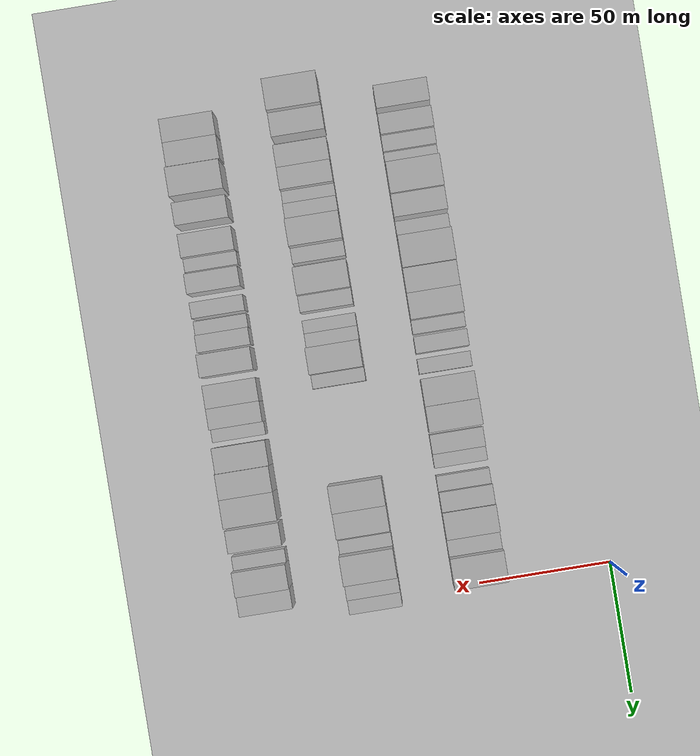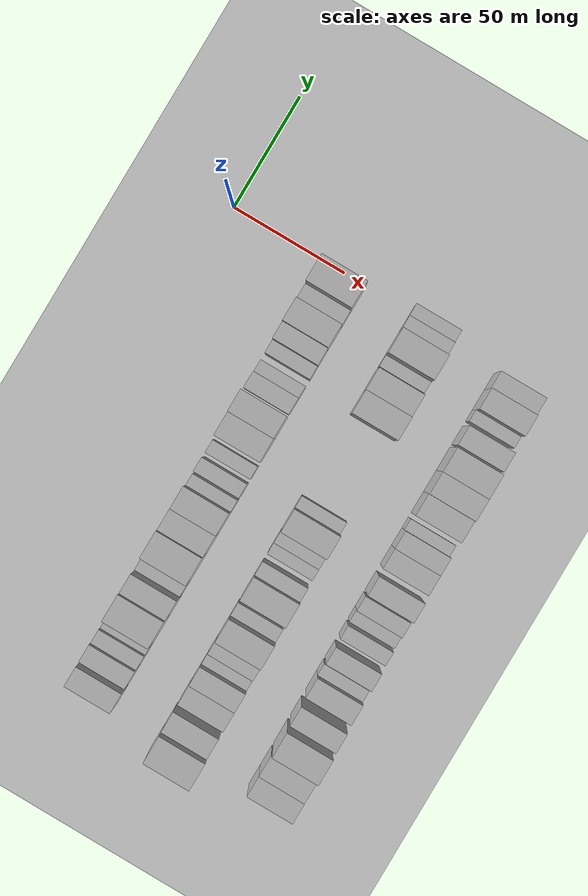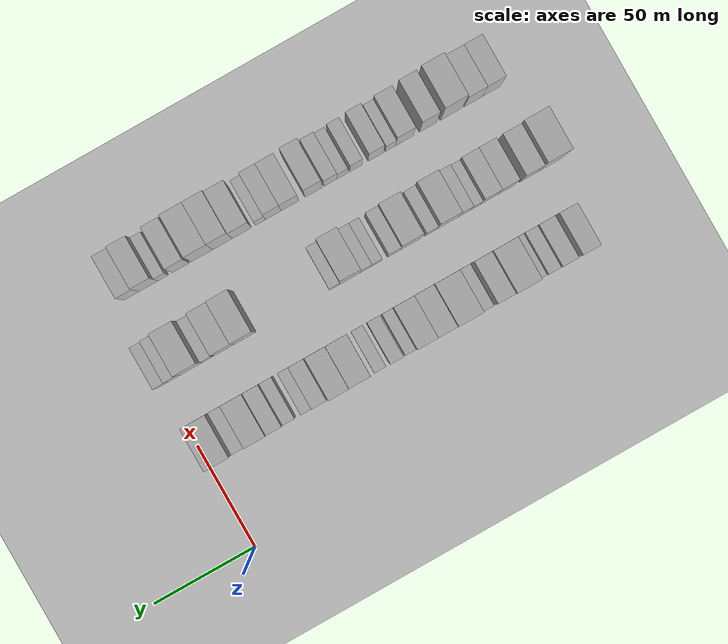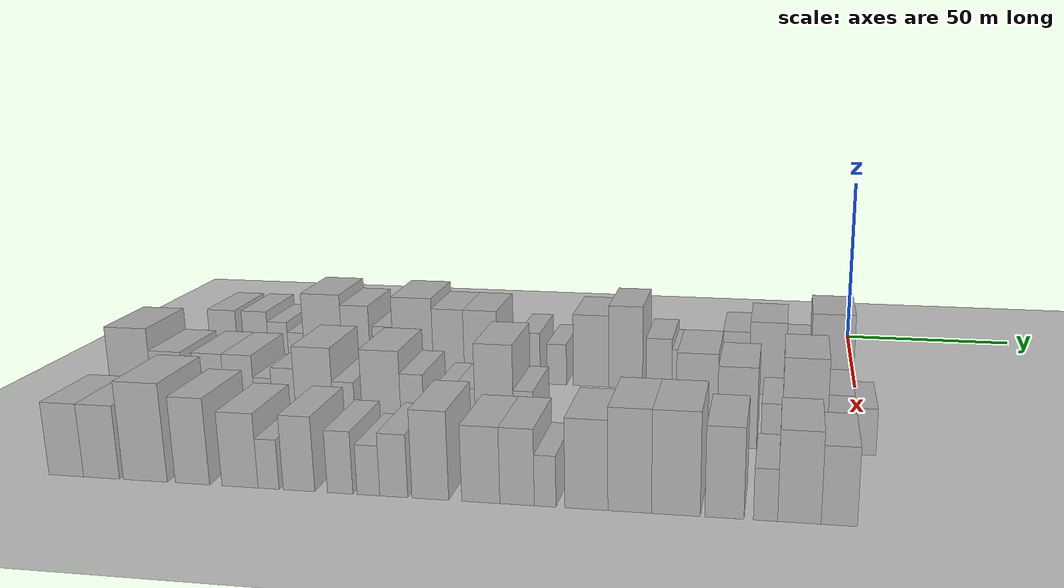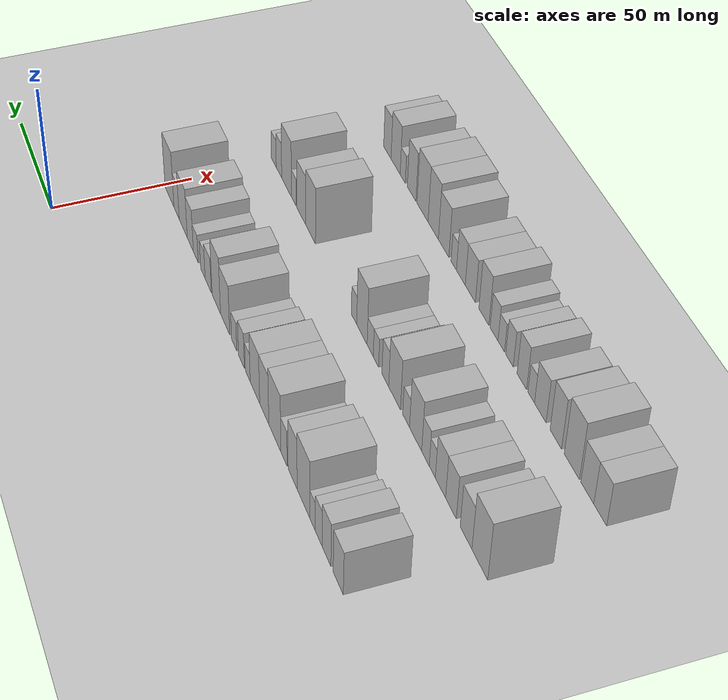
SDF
<sdf version="1.6">
 <world name="default">
  <include><name>ground_plane_1</name><uri>model://HANNAS_ground_plane</uri></include>
  <model name="building_21">
   <static>1</static>
   <pose>50.0000 -184.9429 0 0.000000 0.000000 0.000000</pose>
   <link name="link">
    <pose>0 0 9.00 0 0 0</pose>
    <collision name="collision"><geometry><box><size>20.0000 8.5980 18.0000</size></box></geometry></collision>
    <visual name="visual">
     <cast_shadows>0</cast_shadows>
     <geometry><box><size>20.0000 8.5980 18.0000</size></box></geometry>
     <material>
      <script>
       <uri>model://HANNAS_wall/materials/scripts</uri>
       <uri>model://HANNAS_wall/materials/textures</uri>
       <name>vrc/HANNAS_wall</name>
      </script>
     </material>
    </visual>
   </link>
  </model>
  <model name="building_22">
   <static>1</static>
   <pose>50.0000 -174.7971 0 0.000000 0.000000 0.000000</pose>
   <link name="link">
    <pose>0 0 9.00 0 0 0</pose>
    <collision name="collision"><geometry><box><size>20.0000 7.6934 18.0000</size></box></geometry></collision>
    <visual name="visual">
     <cast_shadows>0</cast_shadows>
     <geometry><box><size>20.0000 7.6934 18.0000</size></box></geometry>
     <material>
      <script>
       <uri>model://HANNAS_wall/materials/scripts</uri>
       <uri>model://HANNAS_wall/materials/textures</uri>
       <name>vrc/HANNAS_wall</name>
      </script>
     </material>
    </visual>
   </link>
  </model>
  <model name="building_23">
   <static>1</static>
   <pose>50.0000 -167.9164 0 0.000000 0.000000 0.000000</pose>
   <link name="link">
    <pose>0 0 7.50 0 0 0</pose>
    <collision name="collision"><geometry><box><size>20.0000 6.0680 15.0000</size></box></geometry></collision>
    <visual name="visual">
     <cast_shadows>0</cast_shadows>
     <geometry><box><size>20.0000 6.0680 15.0000</size></box></geometry>
     <material>
      <script>
       <uri>model://HANNAS_wall/materials/scripts</uri>
       <uri>model://HANNAS_wall/materials/textures</uri>
       <name>vrc/HANNAS_wall</name>
      </script>
     </material>
    </visual>
   </link>
  </model>
  <model name="building_24">
   <static>1</static>
   <pose>50.0000 -162.3977 0 0.000000 0.000000 0.000000</pose>
   <link name="link">
    <pose>0 0 6.00 0 0 0</pose>
    <collision name="collision"><geometry><box><size>20.0000 4.9694 12.0000</size></box></geometry></collision>
    <visual name="visual">
     <cast_shadows>0</cast_shadows>
     <geometry><box><size>20.0000 4.9694 12.0000</size></box></geometry>
     <material>
      <script>
       <uri>model://HANNAS_wall/materials/scripts</uri>
       <uri>model://HANNAS_wall/materials/textures</uri>
       <name>vrc/HANNAS_wall</name>
      </script>
     </material>
    </visual>
   </link>
  </model>
  <model name="building_25">
   <static>1</static>
   <pose>50.0000 -154.0770 0 0.000000 0.000000 0.000000</pose>
   <link name="link">
    <pose>0 0 12.00 0 0 0</pose>
    <collision name="collision"><geometry><box><size>20.0000 11.6722 24.0000</size></box></geometry></collision>
    <visual name="visual">
     <cast_shadows>0</cast_shadows>
     <geometry><box><size>20.0000 11.6722 24.0000</size></box></geometry>
     <material>
      <script>
       <uri>model://HANNAS_wall/materials/scripts</uri>
       <uri>model://HANNAS_wall/materials/textures</uri>
       <name>vrc/HANNAS_wall</name>
      </script>
     </material>
    </visual>
   </link>
  </model>
  <model name="building_26">
   <static>1</static>
   <pose>50.0000 -143.9852 0 0.000000 0.000000 0.000000</pose>
   <link name="link">
    <pose>0 0 10.50 0 0 0</pose>
    <collision name="collision"><geometry><box><size>20.0000 8.5114 21.0000</size></box></geometry></collision>
    <visual name="visual">
     <cast_shadows>0</cast_shadows>
     <geometry><box><size>20.0000 8.5114 21.0000</size></box></geometry>
     <material>
      <script>
       <uri>model://HANNAS_wall/materials/scripts</uri>
       <uri>model://HANNAS_wall/materials/textures</uri>
       <name>vrc/HANNAS_wall</name>
      </script>
     </material>
    </visual>
   </link>
  </model>
  <model name="building_27">
   <static>1</static>
   <pose>50.0000 -135.7259 0 0.000000 0.000000 0.000000</pose>
   <link name="link">
    <pose>0 0 7.50 0 0 0</pose>
    <collision name="collision"><geometry><box><size>20.0000 6.0072 15.0000</size></box></geometry></collision>
    <visual name="visual">
     <cast_shadows>0</cast_shadows>
     <geometry><box><size>20.0000 6.0072 15.0000</size></box></geometry>
     <material>
      <script>
       <uri>model://HANNAS_wall/materials/scripts</uri>
       <uri>model://HANNAS_wall/materials/textures</uri>
       <name>vrc/HANNAS_wall</name>
      </script>
     </material>
    </visual>
   </link>
  </model>
  <model name="building_28">
   <static>1</static>
   <pose>50.0000 -126.7487 0 0.000000 0.000000 0.000000</pose>
   <link name="link">
    <pose>0 0 12.00 0 0 0</pose>
    <collision name="collision"><geometry><box><size>20.0000 11.9471 24.0000</size></box></geometry></collision>
    <visual name="visual">
     <cast_shadows>0</cast_shadows>
     <geometry><box><size>20.0000 11.9471 24.0000</size></box></geometry>
     <material>
      <script>
       <uri>model://HANNAS_wall/materials/scripts</uri>
       <uri>model://HANNAS_wall/materials/textures</uri>
       <name>vrc/HANNAS_wall</name>
      </script>
     </material>
    </visual>
   </link>
  </model>
  <model name="building_29">
   <static>1</static>
   <pose>50.0000 -116.1441 0 0.000000 0.000000 0.000000</pose>
   <link name="link">
    <pose>0 0 10.50 0 0 0</pose>
    <collision name="collision"><geometry><box><size>20.0000 9.2621 21.0000</size></box></geometry></collision>
    <visual name="visual">
     <cast_shadows>0</cast_shadows>
     <geometry><box><size>20.0000 9.2621 21.0000</size></box></geometry>
     <material>
      <script>
       <uri>model://HANNAS_wall/materials/scripts</uri>
       <uri>model://HANNAS_wall/materials/textures</uri>
       <name>vrc/HANNAS_wall</name>
      </script>
     </material>
    </visual>
   </link>
  </model>
  <model name="building_30">
   <static>1</static>
   <pose>50.0000 -106.5851 0 0.000000 0.000000 0.000000</pose>
   <link name="link">
    <pose>0 0 10.50 0 0 0</pose>
    <collision name="collision"><geometry><box><size>20.0000 9.8558 21.0000</size></box></geometry></collision>
    <visual name="visual">
     <cast_shadows>0</cast_shadows>
     <geometry><box><size>20.0000 9.8558 21.0000</size></box></geometry>
     <material>
      <script>
       <uri>model://HANNAS_wall/materials/scripts</uri>
       <uri>model://HANNAS_wall/materials/textures</uri>
       <name>vrc/HANNAS_wall</name>
      </script>
     </material>
    </visual>
   </link>
  </model>
  <model name="building_31">
   <static>1</static>
   <pose>50.0000 -99.0614 0 0.000000 0.000000 0.000000</pose>
   <link name="link">
    <pose>0 0 6.00 0 0 0</pose>
    <collision name="collision"><geometry><box><size>20.0000 5.1916 12.0000</size></box></geometry></collision>
    <visual name="visual">
     <cast_shadows>0</cast_shadows>
     <geometry><box><size>20.0000 5.1916 12.0000</size></box></geometry>
     <material>
      <script>
       <uri>model://HANNAS_wall/materials/scripts</uri>
       <uri>model://HANNAS_wall/materials/textures</uri>
       <name>vrc/HANNAS_wall</name>
      </script>
     </material>
    </visual>
   </link>
  </model>
  <model name="building_32">
   <static>1</static>
   <pose>50.0000 -92.3239 0 0.000000 0.000000 0.000000</pose>
   <link name="link">
    <pose>0 0 7.50 0 0 0</pose>
    <collision name="collision"><geometry><box><size>20.0000 6.2834 15.0000</size></box></geometry></collision>
    <visual name="visual">
     <cast_shadows>0</cast_shadows>
     <geometry><box><size>20.0000 6.2834 15.0000</size></box></geometry>
     <material>
      <script>
       <uri>model://HANNAS_wall/materials/scripts</uri>
       <uri>model://HANNAS_wall/materials/textures</uri>
       <name>vrc/HANNAS_wall</name>
      </script>
     </material>
    </visual>
   </link>
  </model>
  <model name="building_33">
   <static>1</static>
   <pose>50.0000 -84.3592 0 0.000000 0.000000 0.000000</pose>
   <link name="link">
    <pose>0 0 6.00 0 0 0</pose>
    <collision name="collision"><geometry><box><size>20.0000 5.6460 12.0000</size></box></geometry></collision>
    <visual name="visual">
     <cast_shadows>0</cast_shadows>
     <geometry><box><size>20.0000 5.6460 12.0000</size></box></geometry>
     <material>
      <script>
       <uri>model://HANNAS_wall/materials/scripts</uri>
       <uri>model://HANNAS_wall/materials/textures</uri>
       <name>vrc/HANNAS_wall</name>
      </script>
     </material>
    </visual>
   </link>
  </model>
  <model name="building_34">
   <static>1</static>
   <pose>50.0000 -74.3983 0 0.000000 0.000000 0.000000</pose>
   <link name="link">
    <pose>0 0 10.50 0 0 0</pose>
    <collision name="collision"><geometry><box><size>20.0000 10.2758 21.0000</size></box></geometry></collision>
    <visual name="visual">
     <cast_shadows>0</cast_shadows>
     <geometry><box><size>20.0000 10.2758 21.0000</size></box></geometry>
     <material>
      <script>
       <uri>model://HANNAS_wall/materials/scripts</uri>
       <uri>model://HANNAS_wall/materials/textures</uri>
       <name>vrc/HANNAS_wall</name>
      </script>
     </material>
    </visual>
   </link>
  </model>
  <model name="building_35">
   <static>1</static>
   <pose>50.0000 -64.4441 0 0.000000 0.000000 0.000000</pose>
   <link name="link">
    <pose>0 0 12.00 0 0 0</pose>
    <collision name="collision"><geometry><box><size>20.0000 9.6326 24.0000</size></box></geometry></collision>
    <visual name="visual">
     <cast_shadows>0</cast_shadows>
     <geometry><box><size>20.0000 9.6326 24.0000</size></box></geometry>
     <material>
      <script>
       <uri>model://HANNAS_wall/materials/scripts</uri>
       <uri>model://HANNAS_wall/materials/textures</uri>
       <name>vrc/HANNAS_wall</name>
      </script>
     </material>
    </visual>
   </link>
  </model>
  <model name="building_36">
   <static>1</static>
   <pose>50.0000 -54.9744 0 0.000000 0.000000 0.000000</pose>
   <link name="link">
    <pose>0 0 7.50 0 0 0</pose>
    <collision name="collision"><geometry><box><size>20.0000 7.3068 15.0000</size></box></geometry></collision>
    <visual name="visual">
     <cast_shadows>0</cast_shadows>
     <geometry><box><size>20.0000 7.3068 15.0000</size></box></geometry>
     <material>
      <script>
       <uri>model://HANNAS_wall/materials/scripts</uri>
       <uri>model://HANNAS_wall/materials/textures</uri>
       <name>vrc/HANNAS_wall</name>
      </script>
     </material>
    </visual>
   </link>
  </model>
  <model name="building_37">
   <static>1</static>
   <pose>50.0000 -48.6844 0 0.000000 0.000000 0.000000</pose>
   <link name="link">
    <pose>0 0 6.00 0 0 0</pose>
    <collision name="collision"><geometry><box><size>20.0000 5.2732 12.0000</size></box></geometry></collision>
    <visual name="visual">
     <cast_shadows>0</cast_shadows>
     <geometry><box><size>20.0000 5.2732 12.0000</size></box></geometry>
     <material>
      <script>
       <uri>model://HANNAS_wall/materials/scripts</uri>
       <uri>model://HANNAS_wall/materials/textures</uri>
       <name>vrc/HANNAS_wall</name>
      </script>
     </material>
    </visual>
   </link>
  </model>
  <model name="building_38">
   <static>1</static>
   <pose>50.0000 -40.1259 0 0.000000 0.000000 0.000000</pose>
   <link name="link">
    <pose>0 0 6.00 0 0 0</pose>
    <collision name="collision"><geometry><box><size>20.0000 5.8437 12.0000</size></box></geometry></collision>
    <visual name="visual">
     <cast_shadows>0</cast_shadows>
     <geometry><box><size>20.0000 5.8437 12.0000</size></box></geometry>
     <material>
      <script>
       <uri>model://HANNAS_wall/materials/scripts</uri>
       <uri>model://HANNAS_wall/materials/textures</uri>
       <name>vrc/HANNAS_wall</name>
      </script>
     </material>
    </visual>
   </link>
  </model>
  <model name="building_39">
   <static>1</static>
   <pose>50.0000 -33.4594 0 0.000000 0.000000 0.000000</pose>
   <link name="link">
    <pose>0 0 9.00 0 0 0</pose>
    <collision name="collision"><geometry><box><size>20.0000 7.4892 18.0000</size></box></geometry></collision>
    <visual name="visual">
     <cast_shadows>0</cast_shadows>
     <geometry><box><size>20.0000 7.4892 18.0000</size></box></geometry>
     <material>
      <script>
       <uri>model://HANNAS_wall/materials/scripts</uri>
       <uri>model://HANNAS_wall/materials/textures</uri>
       <name>vrc/HANNAS_wall</name>
      </script>
     </material>
    </visual>
   </link>
  </model>
  <model name="building_40">
   <static>1</static>
   <pose>50.0000 -24.6484 0 0.000000 0.000000 0.000000</pose>
   <link name="link">
    <pose>0 0 10.50 0 0 0</pose>
    <collision name="collision"><geometry><box><size>20.0000 10.1328 21.0000</size></box></geometry></collision>
    <visual name="visual">
     <cast_shadows>0</cast_shadows>
     <geometry><box><size>20.0000 10.1328 21.0000</size></box></geometry>
     <material>
      <script>
       <uri>model://HANNAS_wall/materials/scripts</uri>
       <uri>model://HANNAS_wall/materials/textures</uri>
       <name>vrc/HANNAS_wall</name>
      </script>
     </material>
    </visual>
   </link>
  </model>
  <model name="building_41">
   <static>1</static>
   <pose>50.0000 -16.2429 0 0.000000 0.000000 0.000000</pose>
   <link name="link">
    <pose>0 0 7.50 0 0 0</pose>
    <collision name="collision"><geometry><box><size>20.0000 6.6781 15.0000</size></box></geometry></collision>
    <visual name="visual">
     <cast_shadows>0</cast_shadows>
     <geometry><box><size>20.0000 6.6781 15.0000</size></box></geometry>
     <material>
      <script>
       <uri>model://HANNAS_wall/materials/scripts</uri>
       <uri>model://HANNAS_wall/materials/textures</uri>
       <name>vrc/HANNAS_wall</name>
      </script>
     </material>
    </visual>
   </link>
  </model>
  <model name="building_42">
   <static>1</static>
   <pose>50.0000 -7.0785 0 0.000000 0.000000 0.000000</pose>
   <link name="link">
    <pose>0 0 12.00 0 0 0</pose>
    <collision name="collision"><geometry><box><size>20.0000 11.6508 24.0000</size></box></geometry></collision>
    <visual name="visual">
     <cast_shadows>0</cast_shadows>
     <geometry><box><size>20.0000 11.6508 24.0000</size></box></geometry>
     <material>
      <script>
       <uri>model://HANNAS_wall/materials/scripts</uri>
       <uri>model://HANNAS_wall/materials/textures</uri>
       <name>vrc/HANNAS_wall</name>
      </script>
     </material>
    </visual>
   </link>
  </model>
  <model name="building_104">
   <static>1</static>
   <pose>90.0000 -191.2590 0 0.000000 0.000000 0.000000</pose>
   <link name="link">
    <pose>0 0 12.00 0 0 0</pose>
    <collision name="collision"><geometry><box><size>20.0000 11.6969 24.0000</size></box></geometry></collision>
    <visual name="visual">
     <cast_shadows>0</cast_shadows>
     <geometry><box><size>20.0000 11.6969 24.0000</size></box></geometry>
     <material>
      <script>
       <uri>model://HANNAS_wall/materials/scripts</uri>
       <uri>model://HANNAS_wall/materials/textures</uri>
       <name>vrc/HANNAS_wall</name>
      </script>
     </material>
    </visual>
   </link>
  </model>
  <model name="building_105">
   <static>1</static>
   <pose>90.0000 -180.9404 0 0.000000 0.000000 0.000000</pose>
   <link name="link">
    <pose>0 0 9.00 0 0 0</pose>
    <collision name="collision"><geometry><box><size>20.0000 8.9405 18.0000</size></box></geometry></collision>
    <visual name="visual">
     <cast_shadows>0</cast_shadows>
     <geometry><box><size>20.0000 8.9405 18.0000</size></box></geometry>
     <material>
      <script>
       <uri>model://HANNAS_wall/materials/scripts</uri>
       <uri>model://HANNAS_wall/materials/textures</uri>
       <name>vrc/HANNAS_wall</name>
      </script>
     </material>
    </visual>
   </link>
  </model>
  <model name="building_106">
   <static>1</static>
   <pose>90.0000 -169.2870 0 0.000000 0.000000 0.000000</pose>
   <link name="link">
    <pose>0 0 9.00 0 0 0</pose>
    <collision name="collision"><geometry><box><size>20.0000 8.3663 18.0000</size></box></geometry></collision>
    <visual name="visual">
     <cast_shadows>0</cast_shadows>
     <geometry><box><size>20.0000 8.3663 18.0000</size></box></geometry>
     <material>
      <script>
       <uri>model://HANNAS_wall/materials/scripts</uri>
       <uri>model://HANNAS_wall/materials/textures</uri>
       <name>vrc/HANNAS_wall</name>
      </script>
     </material>
    </visual>
   </link>
  </model>
  <model name="building_107">
   <static>1</static>
   <pose>90.0000 -160.9855 0 0.000000 0.000000 0.000000</pose>
   <link name="link">
    <pose>0 0 9.00 0 0 0</pose>
    <collision name="collision"><geometry><box><size>20.0000 8.2366 18.0000</size></box></geometry></collision>
    <visual name="visual">
     <cast_shadows>0</cast_shadows>
     <geometry><box><size>20.0000 8.2366 18.0000</size></box></geometry>
     <material>
      <script>
       <uri>model://HANNAS_wall/materials/scripts</uri>
       <uri>model://HANNAS_wall/materials/textures</uri>
       <name>vrc/HANNAS_wall</name>
      </script>
     </material>
    </visual>
   </link>
  </model>
  <model name="building_108">
   <static>1</static>
   <pose>90.0000 -154.3881 0 0.000000 0.000000 0.000000</pose>
   <link name="link">
    <pose>0 0 6.00 0 0 0</pose>
    <collision name="collision"><geometry><box><size>20.0000 4.9584 12.0000</size></box></geometry></collision>
    <visual name="visual">
     <cast_shadows>0</cast_shadows>
     <geometry><box><size>20.0000 4.9584 12.0000</size></box></geometry>
     <material>
      <script>
       <uri>model://HANNAS_wall/materials/scripts</uri>
       <uri>model://HANNAS_wall/materials/textures</uri>
       <name>vrc/HANNAS_wall</name>
      </script>
     </material>
    </visual>
   </link>
  </model>
  <model name="building_109">
   <static>1</static>
   <pose>90.0000 -148.8014 0 0.000000 0.000000 0.000000</pose>
   <link name="link">
    <pose>0 0 7.50 0 0 0</pose>
    <collision name="collision"><geometry><box><size>20.0000 6.2149 15.0000</size></box></geometry></collision>
    <visual name="visual">
     <cast_shadows>0</cast_shadows>
     <geometry><box><size>20.0000 6.2149 15.0000</size></box></geometry>
     <material>
      <script>
       <uri>model://HANNAS_wall/materials/scripts</uri>
       <uri>model://HANNAS_wall/materials/textures</uri>
       <name>vrc/HANNAS_wall</name>
      </script>
     </material>
    </visual>
   </link>
  </model>
  <model name="building_110">
   <static>1</static>
   <pose>90.0000 -140.5564 0 0.000000 0.000000 0.000000</pose>
   <link name="link">
    <pose>0 0 10.50 0 0 0</pose>
    <collision name="collision"><geometry><box><size>20.0000 10.2752 21.0000</size></box></geometry></collision>
    <visual name="visual">
     <cast_shadows>0</cast_shadows>
     <geometry><box><size>20.0000 10.2752 21.0000</size></box></geometry>
     <material>
      <script>
       <uri>model://HANNAS_wall/materials/scripts</uri>
       <uri>model://HANNAS_wall/materials/textures</uri>
       <name>vrc/HANNAS_wall</name>
      </script>
     </material>
    </visual>
   </link>
  </model>
  <model name="building_111">
   <static>1</static>
   <pose>90.0000 -132.5058 0 0.000000 0.000000 0.000000</pose>
   <link name="link">
    <pose>0 0 6.00 0 0 0</pose>
    <collision name="collision"><geometry><box><size>20.0000 5.8261 12.0000</size></box></geometry></collision>
    <visual name="visual">
     <cast_shadows>0</cast_shadows>
     <geometry><box><size>20.0000 5.8261 12.0000</size></box></geometry>
     <material>
      <script>
       <uri>model://HANNAS_wall/materials/scripts</uri>
       <uri>model://HANNAS_wall/materials/textures</uri>
       <name>vrc/HANNAS_wall</name>
      </script>
     </material>
    </visual>
   </link>
  </model>
  <model name="building_112">
   <static>1</static>
   <pose>90.0000 -122.4052 0 0.000000 0.000000 0.000000</pose>
   <link name="link">
    <pose>0 0 10.50 0 0 0</pose>
    <collision name="collision"><geometry><box><size>20.0000 10.3751 21.0000</size></box></geometry></collision>
    <visual name="visual">
     <cast_shadows>0</cast_shadows>
     <geometry><box><size>20.0000 10.3751 21.0000</size></box></geometry>
     <material>
      <script>
       <uri>model://HANNAS_wall/materials/scripts</uri>
       <uri>model://HANNAS_wall/materials/textures</uri>
       <name>vrc/HANNAS_wall</name>
      </script>
     </material>
    </visual>
   </link>
  </model>
  <model name="building_113">
   <static>1</static>
   <pose>90.0000 -114.1606 0 0.000000 0.000000 0.000000</pose>
   <link name="link">
    <pose>0 0 7.50 0 0 0</pose>
    <collision name="collision"><geometry><box><size>20.0000 6.1142 15.0000</size></box></geometry></collision>
    <visual name="visual">
     <cast_shadows>0</cast_shadows>
     <geometry><box><size>20.0000 6.1142 15.0000</size></box></geometry>
     <material>
      <script>
       <uri>model://HANNAS_wall/materials/scripts</uri>
       <uri>model://HANNAS_wall/materials/textures</uri>
       <name>vrc/HANNAS_wall</name>
      </script>
     </material>
    </visual>
   </link>
  </model>
  <model name="building_114">
   <static>1</static>
   <pose>90.0000 -105.6627 0 0.000000 0.000000 0.000000</pose>
   <link name="link">
    <pose>0 0 6.00 0 0 0</pose>
    <collision name="collision"><geometry><box><size>20.0000 4.8816 12.0000</size></box></geometry></collision>
    <visual name="visual">
     <cast_shadows>0</cast_shadows>
     <geometry><box><size>20.0000 4.8816 12.0000</size></box></geometry>
     <material>
      <script>
       <uri>model://HANNAS_wall/materials/scripts</uri>
       <uri>model://HANNAS_wall/materials/textures</uri>
       <name>vrc/HANNAS_wall</name>
      </script>
     </material>
    </visual>
   </link>
  </model>
  <model name="building_115">
   <static>1</static>
   <pose>90.0000 -100.3809 0 0.000000 0.000000 0.000000</pose>
   <link name="link">
    <pose>0 0 6.00 0 0 0</pose>
    <collision name="collision"><geometry><box><size>20.0000 5.6820 12.0000</size></box></geometry></collision>
    <visual name="visual">
     <cast_shadows>0</cast_shadows>
     <geometry><box><size>20.0000 5.6820 12.0000</size></box></geometry>
     <material>
      <script>
       <uri>model://HANNAS_wall/materials/scripts</uri>
       <uri>model://HANNAS_wall/materials/textures</uri>
       <name>vrc/HANNAS_wall</name>
      </script>
     </material>
    </visual>
   </link>
  </model>
  <model name="building_116">
   <static>1</static>
   <pose>90.0000 -92.5553 0 0.000000 0.000000 0.000000</pose>
   <link name="link">
    <pose>0 0 12.00 0 0 0</pose>
    <collision name="collision"><geometry><box><size>20.0000 9.9691 24.0000</size></box></geometry></collision>
    <visual name="visual">
     <cast_shadows>0</cast_shadows>
     <geometry><box><size>20.0000 9.9691 24.0000</size></box></geometry>
     <material>
      <script>
       <uri>model://HANNAS_wall/materials/scripts</uri>
       <uri>model://HANNAS_wall/materials/textures</uri>
       <name>vrc/HANNAS_wall</name>
      </script>
     </material>
    </visual>
   </link>
  </model>
  <model name="building_117">
   <static>1</static>
   <pose>90.0000 -84.9997 0 0.000000 0.000000 0.000000</pose>
   <link name="link">
    <pose>0 0 6.00 0 0 0</pose>
    <collision name="collision"><geometry><box><size>20.0000 5.1421 12.0000</size></box></geometry></collision>
    <visual name="visual">
     <cast_shadows>0</cast_shadows>
     <geometry><box><size>20.0000 5.1421 12.0000</size></box></geometry>
     <material>
      <script>
       <uri>model://HANNAS_wall/materials/scripts</uri>
       <uri>model://HANNAS_wall/materials/textures</uri>
       <name>vrc/HANNAS_wall</name>
      </script>
     </material>
    </visual>
   </link>
  </model>
  <model name="building_118">
   <static>1</static>
   <pose>90.0000 -41.1216 0 0.000000 0.000000 0.000000</pose>
   <link name="link">
    <pose>0 0 12.00 0 0 0</pose>
    <collision name="collision"><geometry><box><size>20.0000 10.2047 24.0000</size></box></geometry></collision>
    <visual name="visual">
     <cast_shadows>0</cast_shadows>
     <geometry><box><size>20.0000 10.2047 24.0000</size></box></geometry>
     <material>
      <script>
       <uri>model://HANNAS_wall/materials/scripts</uri>
       <uri>model://HANNAS_wall/materials/textures</uri>
       <name>vrc/HANNAS_wall</name>
      </script>
     </material>
    </visual>
   </link>
  </model>
  <model name="building_119">
   <static>1</static>
   <pose>90.0000 -31.1318 0 0.000000 0.000000 0.000000</pose>
   <link name="link">
    <pose>0 0 10.50 0 0 0</pose>
    <collision name="collision"><geometry><box><size>20.0000 9.7748 21.0000</size></box></geometry></collision>
    <visual name="visual">
     <cast_shadows>0</cast_shadows>
     <geometry><box><size>20.0000 9.7748 21.0000</size></box></geometry>
     <material>
      <script>
       <uri>model://HANNAS_wall/materials/scripts</uri>
       <uri>model://HANNAS_wall/materials/textures</uri>
       <name>vrc/HANNAS_wall</name>
      </script>
     </material>
    </visual>
   </link>
  </model>
  <model name="building_120">
   <static>1</static>
   <pose>90.0000 -22.6886 0 0.000000 0.000000 0.000000</pose>
   <link name="link">
    <pose>0 0 6.00 0 0 0</pose>
    <collision name="collision"><geometry><box><size>20.0000 5.1116 12.0000</size></box></geometry></collision>
    <visual name="visual">
     <cast_shadows>0</cast_shadows>
     <geometry><box><size>20.0000 5.1116 12.0000</size></box></geometry>
     <material>
      <script>
       <uri>model://HANNAS_wall/materials/scripts</uri>
       <uri>model://HANNAS_wall/materials/textures</uri>
       <name>vrc/HANNAS_wall</name>
      </script>
     </material>
    </visual>
   </link>
  </model>
  <model name="building_121">
   <static>1</static>
   <pose>90.0000 -14.6703 0 0.000000 0.000000 0.000000</pose>
   <link name="link">
    <pose>0 0 12.00 0 0 0</pose>
    <collision name="collision"><geometry><box><size>20.0000 10.9248 24.0000</size></box></geometry></collision>
    <visual name="visual">
     <cast_shadows>0</cast_shadows>
     <geometry><box><size>20.0000 10.9248 24.0000</size></box></geometry>
     <material>
      <script>
       <uri>model://HANNAS_wall/materials/scripts</uri>
       <uri>model://HANNAS_wall/materials/textures</uri>
       <name>vrc/HANNAS_wall</name>
      </script>
     </material>
    </visual>
   </link>
  </model>
  <model name="building_122">
   <static>1</static>
   <pose>90.0000 -6.0878 0 0.000000 0.000000 0.000000</pose>
   <link name="link">
    <pose>0 0 7.50 0 0 0</pose>
    <collision name="collision"><geometry><box><size>20.0000 6.2402 15.0000</size></box></geometry></collision>
    <visual name="visual">
     <cast_shadows>0</cast_shadows>
     <geometry><box><size>20.0000 6.2402 15.0000</size></box></geometry>
     <material>
      <script>
       <uri>model://HANNAS_wall/materials/scripts</uri>
       <uri>model://HANNAS_wall/materials/textures</uri>
       <name>vrc/HANNAS_wall</name>
      </script>
     </material>
    </visual>
   </link>
  </model>
  <model name="building_123">
   <static>1</static>
   <pose>90.0000 -0.1505 0 0.000000 0.000000 0.000000</pose>
   <link name="link">
    <pose>0 0 6.00 0 0 0</pose>
    <collision name="collision"><geometry><box><size>20.0000 5.6346 12.0000</size></box></geometry></collision>
    <visual name="visual">
     <cast_shadows>0</cast_shadows>
     <geometry><box><size>20.0000 5.6346 12.0000</size></box></geometry>
     <material>
      <script>
       <uri>model://HANNAS_wall/materials/scripts</uri>
       <uri>model://HANNAS_wall/materials/textures</uri>
       <name>vrc/HANNAS_wall</name>
      </script>
     </material>
    </visual>
   </link>
  </model>
  <model name="building_193">
   <static>1</static>
   <pose>130.0000 -185.1947 0 0.000000 0.000000 0.000000</pose>
   <link name="link">
    <pose>0 0 9.00 0 0 0</pose>
    <collision name="collision"><geometry><box><size>20.0000 8.7527 18.0000</size></box></geometry></collision>
    <visual name="visual">
     <cast_shadows>0</cast_shadows>
     <geometry><box><size>20.0000 8.7527 18.0000</size></box></geometry>
     <material>
      <script>
       <uri>model://HANNAS_wall/materials/scripts</uri>
       <uri>model://HANNAS_wall/materials/textures</uri>
       <name>vrc/HANNAS_wall</name>
      </script>
     </material>
    </visual>
   </link>
  </model>
  <model name="building_194">
   <static>1</static>
   <pose>130.0000 -176.3349 0 0.000000 0.000000 0.000000</pose>
   <link name="link">
    <pose>0 0 9.00 0 0 0</pose>
    <collision name="collision"><geometry><box><size>20.0000 8.9670 18.0000</size></box></geometry></collision>
    <visual name="visual">
     <cast_shadows>0</cast_shadows>
     <geometry><box><size>20.0000 8.9670 18.0000</size></box></geometry>
     <material>
      <script>
       <uri>model://HANNAS_wall/materials/scripts</uri>
       <uri>model://HANNAS_wall/materials/textures</uri>
       <name>vrc/HANNAS_wall</name>
      </script>
     </material>
    </visual>
   </link>
  </model>
  <model name="building_195">
   <static>1</static>
   <pose>130.0000 -165.4227 0 0.000000 0.000000 0.000000</pose>
   <link name="link">
    <pose>0 0 12.00 0 0 0</pose>
    <collision name="collision"><geometry><box><size>20.0000 10.8573 24.0000</size></box></geometry></collision>
    <visual name="visual">
     <cast_shadows>0</cast_shadows>
     <geometry><box><size>20.0000 10.8573 24.0000</size></box></geometry>
     <material>
      <script>
       <uri>model://HANNAS_wall/materials/scripts</uri>
       <uri>model://HANNAS_wall/materials/textures</uri>
       <name>vrc/HANNAS_wall</name>
      </script>
     </material>
    </visual>
   </link>
  </model>
  <model name="building_196">
   <static>1</static>
   <pose>130.0000 -153.7935 0 0.000000 0.000000 0.000000</pose>
   <link name="link">
    <pose>0 0 10.50 0 0 0</pose>
    <collision name="collision"><geometry><box><size>20.0000 8.4012 21.0000</size></box></geometry></collision>
    <visual name="visual">
     <cast_shadows>0</cast_shadows>
     <geometry><box><size>20.0000 8.4012 21.0000</size></box></geometry>
     <material>
      <script>
       <uri>model://HANNAS_wall/materials/scripts</uri>
       <uri>model://HANNAS_wall/materials/textures</uri>
       <name>vrc/HANNAS_wall</name>
      </script>
     </material>
    </visual>
   </link>
  </model>
  <model name="building_197">
   <static>1</static>
   <pose>130.0000 -142.2226 0 0.000000 0.000000 0.000000</pose>
   <link name="link">
    <pose>0 0 9.00 0 0 0</pose>
    <collision name="collision"><geometry><box><size>20.0000 8.7406 18.0000</size></box></geometry></collision>
    <visual name="visual">
     <cast_shadows>0</cast_shadows>
     <geometry><box><size>20.0000 8.7406 18.0000</size></box></geometry>
     <material>
      <script>
       <uri>model://HANNAS_wall/materials/scripts</uri>
       <uri>model://HANNAS_wall/materials/textures</uri>
       <name>vrc/HANNAS_wall</name>
      </script>
     </material>
    </visual>
   </link>
  </model>
  <model name="building_198">
   <static>1</static>
   <pose>130.0000 -135.3242 0 0.000000 0.000000 0.000000</pose>
   <link name="link">
    <pose>0 0 6.00 0 0 0</pose>
    <collision name="collision"><geometry><box><size>20.0000 5.0562 12.0000</size></box></geometry></collision>
    <visual name="visual">
     <cast_shadows>0</cast_shadows>
     <geometry><box><size>20.0000 5.0562 12.0000</size></box></geometry>
     <material>
      <script>
       <uri>model://HANNAS_wall/materials/scripts</uri>
       <uri>model://HANNAS_wall/materials/textures</uri>
       <name>vrc/HANNAS_wall</name>
      </script>
     </material>
    </visual>
   </link>
  </model>
  <model name="building_199">
   <static>1</static>
   <pose>130.0000 -128.0369 0 0.000000 0.000000 0.000000</pose>
   <link name="link">
    <pose>0 0 9.00 0 0 0</pose>
    <collision name="collision"><geometry><box><size>20.0000 7.5185 18.0000</size></box></geometry></collision>
    <visual name="visual">
     <cast_shadows>0</cast_shadows>
     <geometry><box><size>20.0000 7.5185 18.0000</size></box></geometry>
     <material>
      <script>
       <uri>model://HANNAS_wall/materials/scripts</uri>
       <uri>model://HANNAS_wall/materials/textures</uri>
       <name>vrc/HANNAS_wall</name>
      </script>
     </material>
    </visual>
   </link>
  </model>
  <model name="building_200">
   <static>1</static>
   <pose>130.0000 -118.2763 0 0.000000 0.000000 0.000000</pose>
   <link name="link">
    <pose>0 0 7.50 0 0 0</pose>
    <collision name="collision"><geometry><box><size>20.0000 6.0027 15.0000</size></box></geometry></collision>
    <visual name="visual">
     <cast_shadows>0</cast_shadows>
     <geometry><box><size>20.0000 6.0027 15.0000</size></box></geometry>
     <material>
      <script>
       <uri>model://HANNAS_wall/materials/scripts</uri>
       <uri>model://HANNAS_wall/materials/textures</uri>
       <name>vrc/HANNAS_wall</name>
      </script>
     </material>
    </visual>
   </link>
  </model>
  <model name="building_201">
   <static>1</static>
   <pose>130.0000 -111.6250 0 0.000000 0.000000 0.000000</pose>
   <link name="link">
    <pose>0 0 6.00 0 0 0</pose>
    <collision name="collision"><geometry><box><size>20.0000 5.2998 12.0000</size></box></geometry></collision>
    <visual name="visual">
     <cast_shadows>0</cast_shadows>
     <geometry><box><size>20.0000 5.2998 12.0000</size></box></geometry>
     <material>
      <script>
       <uri>model://HANNAS_wall/materials/scripts</uri>
       <uri>model://HANNAS_wall/materials/textures</uri>
       <name>vrc/HANNAS_wall</name>
      </script>
     </material>
    </visual>
   </link>
  </model>
  <model name="building_202">
   <static>1</static>
   <pose>130.0000 -105.7227 0 0.000000 0.000000 0.000000</pose>
   <link name="link">
    <pose>0 0 7.50 0 0 0</pose>
    <collision name="collision"><geometry><box><size>20.0000 6.5049 15.0000</size></box></geometry></collision>
    <visual name="visual">
     <cast_shadows>0</cast_shadows>
     <geometry><box><size>20.0000 6.5049 15.0000</size></box></geometry>
     <material>
      <script>
       <uri>model://HANNAS_wall/materials/scripts</uri>
       <uri>model://HANNAS_wall/materials/textures</uri>
       <name>vrc/HANNAS_wall</name>
      </script>
     </material>
    </visual>
   </link>
  </model>
  <model name="building_203">
   <static>1</static>
   <pose>130.0000 -97.2465 0 0.000000 0.000000 0.000000</pose>
   <link name="link">
    <pose>0 0 10.50 0 0 0</pose>
    <collision name="collision"><geometry><box><size>20.0000 8.4476 21.0000</size></box></geometry></collision>
    <visual name="visual">
     <cast_shadows>0</cast_shadows>
     <geometry><box><size>20.0000 8.4476 21.0000</size></box></geometry>
     <material>
      <script>
       <uri>model://HANNAS_wall/materials/scripts</uri>
       <uri>model://HANNAS_wall/materials/textures</uri>
       <name>vrc/HANNAS_wall</name>
      </script>
     </material>
    </visual>
   </link>
  </model>
  <model name="building_204">
   <static>1</static>
   <pose>130.0000 -85.6721 0 0.000000 0.000000 0.000000</pose>
   <link name="link">
    <pose>0 0 9.00 0 0 0</pose>
    <collision name="collision"><geometry><box><size>20.0000 8.7011 18.0000</size></box></geometry></collision>
    <visual name="visual">
     <cast_shadows>0</cast_shadows>
     <geometry><box><size>20.0000 8.7011 18.0000</size></box></geometry>
     <material>
      <script>
       <uri>model://HANNAS_wall/materials/scripts</uri>
       <uri>model://HANNAS_wall/materials/textures</uri>
       <name>vrc/HANNAS_wall</name>
      </script>
     </material>
    </visual>
   </link>
  </model>
  <model name="building_205">
   <static>1</static>
   <pose>130.0000 -77.4295 0 0.000000 0.000000 0.000000</pose>
   <link name="link">
    <pose>0 0 9.00 0 0 0</pose>
    <collision name="collision"><geometry><box><size>20.0000 7.7841 18.0000</size></box></geometry></collision>
    <visual name="visual">
     <cast_shadows>0</cast_shadows>
     <geometry><box><size>20.0000 7.7841 18.0000</size></box></geometry>
     <material>
      <script>
       <uri>model://HANNAS_wall/materials/scripts</uri>
       <uri>model://HANNAS_wall/materials/textures</uri>
       <name>vrc/HANNAS_wall</name>
      </script>
     </material>
    </visual>
   </link>
  </model>
  <model name="building_206">
   <static>1</static>
   <pose>130.0000 -71.1152 0 0.000000 0.000000 0.000000</pose>
   <link name="link">
    <pose>0 0 6.00 0 0 0</pose>
    <collision name="collision"><geometry><box><size>20.0000 4.8446 12.0000</size></box></geometry></collision>
    <visual name="visual">
     <cast_shadows>0</cast_shadows>
     <geometry><box><size>20.0000 4.8446 12.0000</size></box></geometry>
     <material>
      <script>
       <uri>model://HANNAS_wall/materials/scripts</uri>
       <uri>model://HANNAS_wall/materials/textures</uri>
       <name>vrc/HANNAS_wall</name>
      </script>
     </material>
    </visual>
   </link>
  </model>
  <model name="building_207">
   <static>1</static>
   <pose>130.0000 -61.9352 0 0.000000 0.000000 0.000000</pose>
   <link name="link">
    <pose>0 0 10.50 0 0 0</pose>
    <collision name="collision"><geometry><box><size>20.0000 9.5155 21.0000</size></box></geometry></collision>
    <visual name="visual">
     <cast_shadows>0</cast_shadows>
     <geometry><box><size>20.0000 9.5155 21.0000</size></box></geometry>
     <material>
      <script>
       <uri>model://HANNAS_wall/materials/scripts</uri>
       <uri>model://HANNAS_wall/materials/textures</uri>
       <name>vrc/HANNAS_wall</name>
      </script>
     </material>
    </visual>
   </link>
  </model>
  <model name="building_208">
   <static>1</static>
   <pose>130.0000 -52.3728 0 0.000000 0.000000 0.000000</pose>
   <link name="link">
    <pose>0 0 12.00 0 0 0</pose>
    <collision name="collision"><geometry><box><size>20.0000 9.6093 24.0000</size></box></geometry></collision>
    <visual name="visual">
     <cast_shadows>0</cast_shadows>
     <geometry><box><size>20.0000 9.6093 24.0000</size></box></geometry>
     <material>
      <script>
       <uri>model://HANNAS_wall/materials/scripts</uri>
       <uri>model://HANNAS_wall/materials/textures</uri>
       <name>vrc/HANNAS_wall</name>
      </script>
     </material>
    </visual>
   </link>
  </model>
  <model name="building_209">
   <static>1</static>
   <pose>130.0000 -42.2781 0 0.000000 0.000000 0.000000</pose>
   <link name="link">
    <pose>0 0 12.00 0 0 0</pose>
    <collision name="collision"><geometry><box><size>20.0000 10.5799 24.0000</size></box></geometry></collision>
    <visual name="visual">
     <cast_shadows>0</cast_shadows>
     <geometry><box><size>20.0000 10.5799 24.0000</size></box></geometry>
     <material>
      <script>
       <uri>model://HANNAS_wall/materials/scripts</uri>
       <uri>model://HANNAS_wall/materials/textures</uri>
       <name>vrc/HANNAS_wall</name>
      </script>
     </material>
    </visual>
   </link>
  </model>
  <model name="building_210">
   <static>1</static>
   <pose>130.0000 -31.7843 0 0.000000 0.000000 0.000000</pose>
   <link name="link">
    <pose>0 0 10.50 0 0 0</pose>
    <collision name="collision"><geometry><box><size>20.0000 8.4078 21.0000</size></box></geometry></collision>
    <visual name="visual">
     <cast_shadows>0</cast_shadows>
     <geometry><box><size>20.0000 8.4078 21.0000</size></box></geometry>
     <material>
      <script>
       <uri>model://HANNAS_wall/materials/scripts</uri>
       <uri>model://HANNAS_wall/materials/textures</uri>
       <name>vrc/HANNAS_wall</name>
      </script>
     </material>
    </visual>
   </link>
  </model>
  <model name="building_211">
   <static>1</static>
   <pose>130.0000 -23.0139 0 0.000000 0.000000 0.000000</pose>
   <link name="link">
    <pose>0 0 6.00 0 0 0</pose>
    <collision name="collision"><geometry><box><size>20.0000 5.1330 12.0000</size></box></geometry></collision>
    <visual name="visual">
     <cast_shadows>0</cast_shadows>
     <geometry><box><size>20.0000 5.1330 12.0000</size></box></geometry>
     <material>
      <script>
       <uri>model://HANNAS_wall/materials/scripts</uri>
       <uri>model://HANNAS_wall/materials/textures</uri>
       <name>vrc/HANNAS_wall</name>
      </script>
     </material>
    </visual>
   </link>
  </model>
  <model name="building_212">
   <static>1</static>
   <pose>130.0000 -15.8483 0 0.000000 0.000000 0.000000</pose>
   <link name="link">
    <pose>0 0 10.50 0 0 0</pose>
    <collision name="collision"><geometry><box><size>20.0000 9.1982 21.0000</size></box></geometry></collision>
    <visual name="visual">
     <cast_shadows>0</cast_shadows>
     <geometry><box><size>20.0000 9.1982 21.0000</size></box></geometry>
     <material>
      <script>
       <uri>model://HANNAS_wall/materials/scripts</uri>
       <uri>model://HANNAS_wall/materials/textures</uri>
       <name>vrc/HANNAS_wall</name>
      </script>
     </material>
    </visual>
   </link>
  </model>
  <model name="building_213">
   <static>1</static>
   <pose>130.0000 -7.4586 0 0.000000 0.000000 0.000000</pose>
   <link name="link">
    <pose>0 0 9.00 0 0 0</pose>
    <collision name="collision"><geometry><box><size>20.0000 7.5812 18.0000</size></box></geometry></collision>
    <visual name="visual">
     <cast_shadows>0</cast_shadows>
     <geometry><box><size>20.0000 7.5812 18.0000</size></box></geometry>
     <material>
      <script>
       <uri>model://HANNAS_wall/materials/scripts</uri>
       <uri>model://HANNAS_wall/materials/textures</uri>
       <name>vrc/HANNAS_wall</name>
      </script>
     </material>
    </visual>
   </link>
  </model>
 </world>
</sdf>
